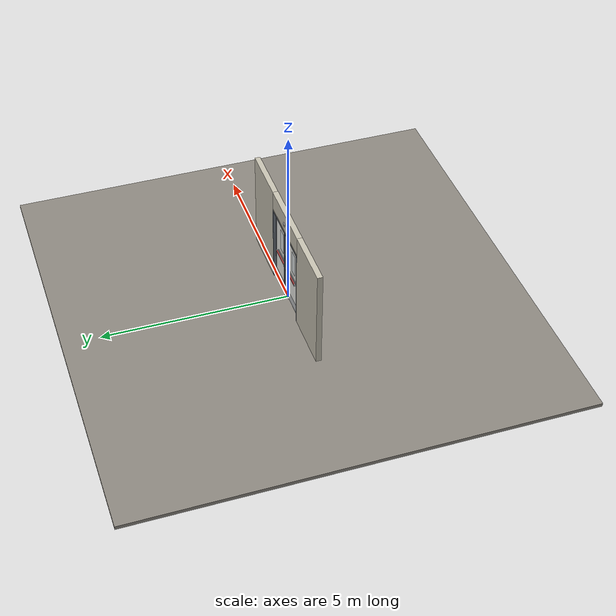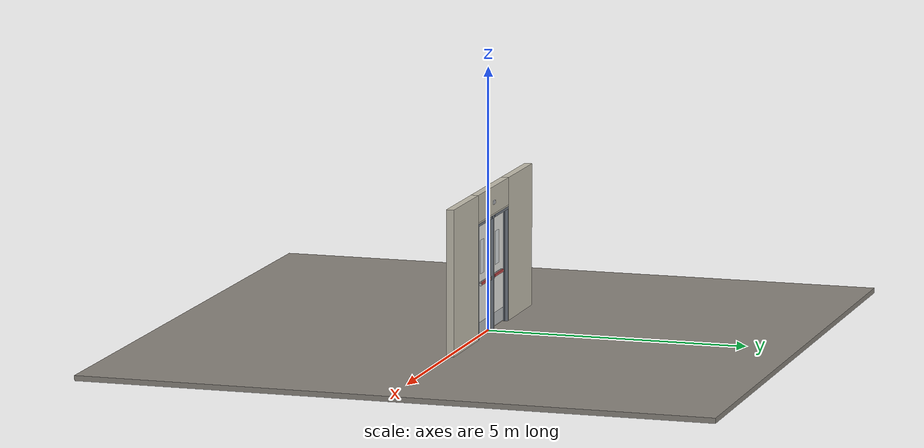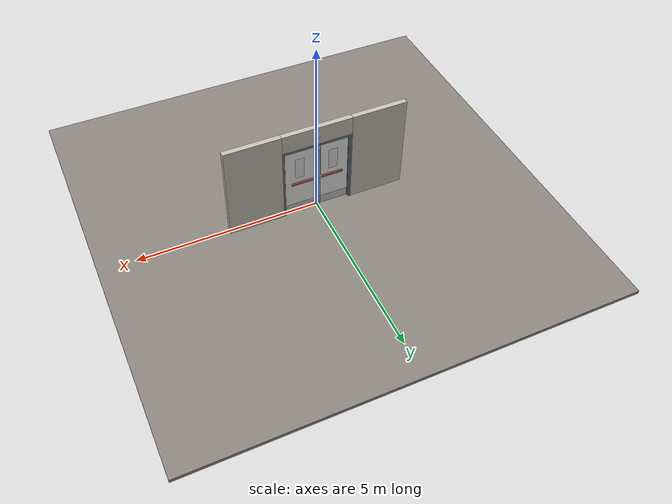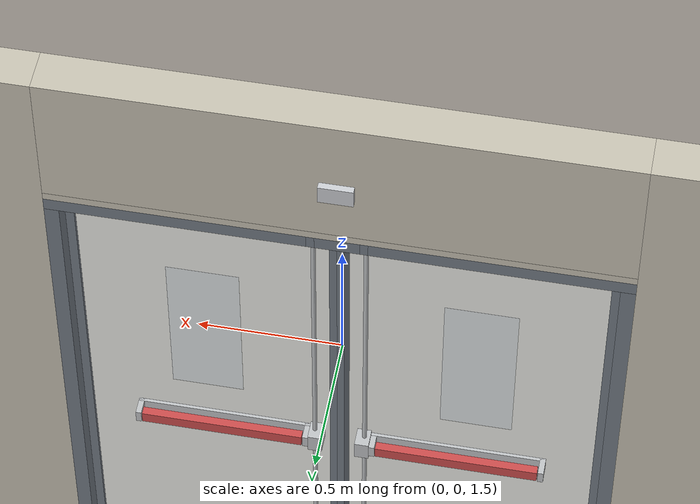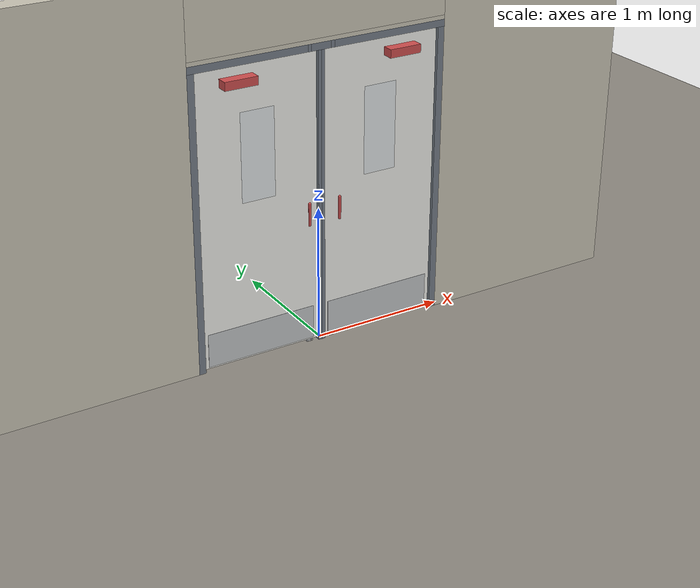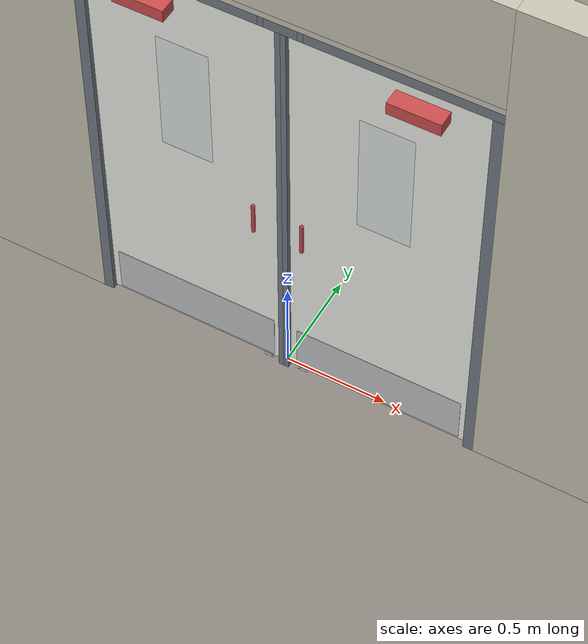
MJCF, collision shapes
<?xml version="1.0" ?>
<mujoco model="db0726_swing_double_full">
  <compiler angle="radian" meshdir="../../hardware" texturedir="../../textures" autolimits="true" inertiafromgeom="false"/>
  <option timestep="0.002" integrator="implicitfast" cone="elliptic" impratio="10" noslip_iterations="3">
    <flag multiccd="enable"/>
  </option>
  <size memory="16M"/>
  <default>
    <geom condim="4" solref="0.005 1" solimp="0.95 0.99 0.001"/>
    <joint solreflimit="0.005 1" solimplimit="0.95 0.99 0.001"/>
    <tendon solreflimit="0.005 1"/>
    <equality solref="0.002 1"/>
  </default>
  <visual>
    <headlight ambient="0.4 0.4 0.4" diffuse="0.7 0.7 0.7" specular="0.2 0.2 0.2"/>
    <quality shadowsize="4096"/>
    <map znear="0.01" zfar="60"/>
  </visual>
  <asset>
    <mesh name="closer_body_b226fdb10b" file="closer_body_b226fdb10b.obj"/>
    <mesh name="exit_sign_a6449bfa2c" file="exit_sign_a6449bfa2c.obj"/>
    <mesh name="hinge_e22b26c0c1" file="hinge_e22b26c0c1.obj"/>
    <mesh name="hinge_jamb_e1d088f8dc" file="hinge_jamb_e1d088f8dc.obj"/>
    <mesh name="pull_1e5d69a91a" file="pull_1e5d69a91a.obj"/>
    <mesh name="touchbar_pad_ddc72763ea" file="touchbar_pad_ddc72763ea.obj"/>
    <material name="mat_floor" rgba="0.55 0.53 0.5 1" specular="0.2" shininess="0.15" reflectance="0"/>
    <material name="mat_wall" rgba="0.78 0.76 0.7 1" specular="0.2" shininess="0.1" reflectance="0"/>
    <material name="mat_leaf_a" rgba="0.93 0.93 0.91 1" specular="0.23" shininess="0.6" reflectance="0.02"/>
    <material name="mat_glass" rgba="0.9 0.93 0.95 0.6" specular="0.2" shininess="0.5" reflectance="0.1"/>
    <material name="mat_hinge" rgba="0.65 0.66 0.68 1" specular="0.74" shininess="0.5" reflectance="0.36"/>
    <material name="mat_op_stainless" rgba="0.75 0.76 0.77 1" specular="0.8" shininess="0.65" reflectance="0.4"/>
    <material name="mat_bolt" rgba="0.75 0.76 0.77 1" specular="0.8" shininess="0.65" reflectance="0.4"/>
    <material name="mat_closer" rgba="0.22 0.17 0.13 1" specular="0.8" shininess="0.6" reflectance="0.4"/>
    <material name="mat_kick" rgba="0.75 0.76 0.77 1" specular="0.8" shininess="0.65" reflectance="0.4"/>
    <material name="mat_exit_sign" rgba="0.85 0.1 0.1 1" specular="0.2" shininess="0.6" reflectance="0"/>
    <material name="mat_sign_bracket" rgba="0.8 0.81 0.83 1" specular="0.8" shininess="0.6" reflectance="0.4"/>
    <material name="mat_leaf_b" rgba="0.93 0.93 0.91 1" specular="0.23" shininess="0.6" reflectance="0.02"/>
    <material name="mat_frame" rgba="0.45 0.48 0.52 1" specular="0.32" shininess="0.6" reflectance="0.08"/>
    <texture name="skybox" type="skybox" builtin="gradient" rgb1="0.6 0.7 0.85" rgb2="0.9 0.92 0.95" width="256" height="256"/>
  </asset>
  <worldbody>
    <light name="sun" pos="1.5 -2.5 4" dir="-0.3 0.5 -0.8" directional="true" diffuse="0.8 0.8 0.8" specular="0.3 0.3 0.3" castshadow="true"/>
    <light name="fill" pos="-1.5 2.5 3" dir="0.3 -0.5 -0.7" directional="true" diffuse="0.35 0.35 0.4" castshadow="false"/>
    <camera name="robot_view" pos="0 -2.607312 1.812087" xyaxes="1 0 0 0 0.26963 0.962964" fovy="52"/>
    <camera name="far_view" pos="0 2.668312 1.812087" xyaxes="-1 0 0 0 -0.26963 0.962964" fovy="52"/>
    <camera name="iso" pos="-2.004737 -2.185262 2.234138" xyaxes="0.741536 -0.670913 0 0.242917 0.268487 0.932151" fovy="46"/>
    <camera name="detail_handle" pos="0.062 -0.882 1.296" xyaxes="0.97561 0.219512 0 -0.070934 0.315262 0.94635" fovy="38"/>
    <geom name="floor" type="box" size="6 6 0.05" pos="0 0 -0.05" material="mat_floor" group="0" contype="1" conaffinity="1" friction="0.8 0.005 0.0001" density="2400"/>
    <geom name="wall_left" type="box" size="0.76575 0.0725 1.3735" pos="-1.73425 0.0305 1.3735" material="mat_wall" group="0" contype="1" conaffinity="1" friction="0.6 0.005 0.0001" density="800"/>
    <geom name="wall_right" type="box" size="0.76575 0.0725 1.3735" pos="1.73425 0.0305 1.3735" material="mat_wall" group="0" contype="1" conaffinity="1" friction="0.6 0.005 0.0001" density="800"/>
    <geom name="wall_header" type="box" size="0.9685 0.0725 0.26" pos="0 0.0305 2.487" material="mat_wall" group="0" contype="1" conaffinity="1" friction="0.6 0.005 0.0001" density="800"/>
    <geom name="hinge_0_jamb" type="mesh" mesh="hinge_jamb_e1d088f8dc" pos="-0.9155 -0.029 0.266" material="mat_hinge" group="1" contype="0" conaffinity="0" density="7850"/>
    <geom name="hinge_1_jamb" type="mesh" mesh="hinge_jamb_e1d088f8dc" pos="-0.9155 -0.029 1.0795" material="mat_hinge" group="1" contype="0" conaffinity="0" density="7850"/>
    <geom name="hinge_2_jamb" type="mesh" mesh="hinge_jamb_e1d088f8dc" pos="-0.9155 -0.029 1.963" material="mat_hinge" group="1" contype="0" conaffinity="0" density="7850"/>
    <geom name="leaf_a_bottom_strike_plate" type="box" size="0.0255 0.0255 0.00075" pos="-0.088 0 0.00075" material="mat_bolt" group="0" contype="1" conaffinity="1" friction="0.6 0.005 0.0001" density="7850"/>
    <geom name="leaf_a_bottom_strike_p" type="box" size="0.0215 0.004 0.00575" pos="-0.088 0.0145 0.00725" material="mat_bolt" group="0" contype="1" conaffinity="1" friction="0.6 0.005 0.0001" density="7850"/>
    <geom name="leaf_a_bottom_strike_n" type="box" size="0.0215 0.004 0.00575" pos="-0.088 -0.0145 0.00725" material="mat_bolt" group="0" contype="1" conaffinity="1" friction="0.6 0.005 0.0001" density="7850"/>
    <geom name="leaf_a_bottom_strike_e" type="box" size="0.004 0.0215 0.00575" pos="-0.0735 0 0.00725" material="mat_bolt" group="0" contype="1" conaffinity="1" friction="0.6 0.005 0.0001" density="7850"/>
    <geom name="exit_sign" type="mesh" mesh="exit_sign_a6449bfa2c" pos="0 0.15 2.447" material="mat_exit_sign" group="2" contype="0" conaffinity="0" density="500"/>
    <geom name="exit_sign_bracket" type="box" size="0.05775 0.0115 0.035" pos="0 0.114 2.447" material="mat_sign_bracket" group="2" contype="0" conaffinity="0" density="7850"/>
    <geom name="hinge_0_jamb_2" type="mesh" mesh="hinge_jamb_e1d088f8dc" pos="0.9155 -0.029 0.266" quat="0 0 1 0" material="mat_hinge" group="1" contype="0" conaffinity="0" density="7850"/>
    <geom name="hinge_1_jamb_2" type="mesh" mesh="hinge_jamb_e1d088f8dc" pos="0.9155 -0.029 1.0795" quat="0 0 1 0" material="mat_hinge" group="1" contype="0" conaffinity="0" density="7850"/>
    <geom name="hinge_2_jamb_2" type="mesh" mesh="hinge_jamb_e1d088f8dc" pos="0.9155 -0.029 1.963" quat="0 0 1 0" material="mat_hinge" group="1" contype="0" conaffinity="0" density="7850"/>
    <geom name="leaf_b_bottom_strike_plate" type="box" size="0.0255 0.0255 0.00075" pos="0.088 0 0.00075" material="mat_bolt" group="0" contype="1" conaffinity="1" friction="0.6 0.005 0.0001" density="7850"/>
    <geom name="leaf_b_bottom_strike_p" type="box" size="0.0215 0.004 0.00575" pos="0.088 0.0145 0.00725" material="mat_bolt" group="0" contype="1" conaffinity="1" friction="0.6 0.005 0.0001" density="7850"/>
    <geom name="leaf_b_bottom_strike_n" type="box" size="0.0215 0.004 0.00575" pos="0.088 -0.0145 0.00725" material="mat_bolt" group="0" contype="1" conaffinity="1" friction="0.6 0.005 0.0001" density="7850"/>
    <geom name="leaf_b_bottom_strike_e" type="box" size="0.004 0.0215 0.00575" pos="0.0735 0 0.00725" material="mat_bolt" group="0" contype="1" conaffinity="1" friction="0.6 0.005 0.0001" density="7850"/>
    <geom name="jamb_l" type="box" size="0.025 0.0725 1.0735" pos="-0.9435 0.0305 1.0735" material="mat_frame" group="0" contype="1" conaffinity="1" friction="0.6 0.005 0.0001" density="300"/>
    <geom name="jamb_r" type="box" size="0.025 0.0725 1.0735" pos="0.9435 0.0305 1.0735" material="mat_frame" group="0" contype="1" conaffinity="1" friction="0.6 0.005 0.0001" density="300"/>
    <geom name="jamb_head_pwall_-88_n" type="box" size="0.0135 0.0155 0.025" pos="-0.088 -0.0265 2.172" material="mat_frame" group="0" contype="1" conaffinity="1" friction="0.6 0.005 0.0001" density="300"/>
    <geom name="jamb_head_pwall_-88_p" type="box" size="0.0135 0.046 0.025" pos="-0.088 0.057 2.172" material="mat_frame" group="0" contype="1" conaffinity="1" friction="0.6 0.005 0.0001" density="300"/>
    <geom name="jamb_head_pback_-88" type="box" size="0.0135 0.011 0.0135" pos="-0.088 0 2.1835" material="mat_frame" group="0" contype="1" conaffinity="1" friction="0.6 0.005 0.0001" density="300"/>
    <geom name="jamb_head_pwall_88_n" type="box" size="0.0135 0.0155 0.025" pos="0.088 -0.0265 2.172" material="mat_frame" group="0" contype="1" conaffinity="1" friction="0.6 0.005 0.0001" density="300"/>
    <geom name="jamb_head_pwall_88_p" type="box" size="0.0135 0.046 0.025" pos="0.088 0.057 2.172" material="mat_frame" group="0" contype="1" conaffinity="1" friction="0.6 0.005 0.0001" density="300"/>
    <geom name="jamb_head_pback_88" type="box" size="0.0135 0.011 0.0135" pos="0.088 0 2.1835" material="mat_frame" group="0" contype="1" conaffinity="1" friction="0.6 0.005 0.0001" density="300"/>
    <geom name="jamb_head_0" type="box" size="0.4335 0.0725 0.025" pos="-0.535 0.0305 2.172" material="mat_frame" group="0" contype="1" conaffinity="1" friction="0.6 0.005 0.0001" density="300"/>
    <geom name="jamb_head_1" type="box" size="0.0745 0.0725 0.025" pos="0 0.0305 2.172" material="mat_frame" group="0" contype="1" conaffinity="1" friction="0.6 0.005 0.0001" density="300"/>
    <geom name="jamb_head_2" type="box" size="0.4335 0.0725 0.025" pos="0.535 0.0305 2.172" material="mat_frame" group="0" contype="1" conaffinity="1" friction="0.6 0.005 0.0001" density="300"/>
    <geom name="head_stud" type="box" size="0.9685 0.0725 0.015" pos="0 0.0305 2.212" material="mat_wall" group="0" contype="1" conaffinity="1" friction="0.6 0.005 0.0001" density="500"/>
    <geom name="stop_l" type="box" size="0.015 0.008 1.0735" pos="-0.9035 0.0305 1.0735" material="mat_frame" group="0" contype="1" conaffinity="1" friction="0.6 0.005 0.0001" density="300"/>
    <geom name="stop_r" type="box" size="0.015 0.008 1.0735" pos="0.9035 0.0305 1.0735" material="mat_frame" group="0" contype="1" conaffinity="1" friction="0.6 0.005 0.0001" density="300"/>
    <geom name="stop_head" type="box" size="0.9185 0.008 0.015" pos="0 0.0305 2.132" material="mat_frame" group="0" contype="1" conaffinity="1" friction="0.6 0.005 0.0001" density="300"/>
    <geom name="mullion_a_seg" type="box" size="0.0125 0.0725 1.0735" pos="-0.0125 0.0305 1.0735" material="mat_frame" group="0" contype="1" conaffinity="1" friction="0.6 0.005 0.0001" density="300"/>
    <geom name="mullion_b_seg" type="box" size="0.0125 0.0725 1.0735" pos="0.0125 0.0305 1.0735" material="mat_frame" group="0" contype="1" conaffinity="1" friction="0.6 0.005 0.0001" density="300"/>
    <site name="approach_point" pos="0 -1.5 0" quat="1 0 0 0" size="0.05" rgba="0.2 0.9 0.2 0.5" group="4"/>
    <site name="goal_point" pos="0 1.5 0" quat="1 0 0 0" size="0.05" rgba="0.2 0.9 0.2 0.5" group="4"/>
    <site name="door_plane_center" pos="0 0 1.0735" quat="1 0 0 0" size="0.02" rgba="0.2 0.9 0.2 0.5" group="4"/>
    <site name="approach_point_2" pos="0 -1.5 0" quat="1 0 0 0" size="0.05" rgba="0.2 0.9 0.2 0.5" group="4"/>
    <site name="goal_point_2" pos="0 1.5 0" quat="1 0 0 0" size="0.05" rgba="0.2 0.9 0.2 0.5" group="4"/>
    <site name="door_plane_center_2" pos="0 0 1.0735" quat="1 0 0 0" size="0.02" rgba="0.2 0.9 0.2 0.5" group="4"/>
    <site name="approach_point_3" pos="0 -1.5 0" quat="1 0 0 0" size="0.05" rgba="0.2 0.9 0.2 0.5" group="4"/>
    <site name="goal_point_3" pos="0 1.5 0" quat="1 0 0 0" size="0.05" rgba="0.2 0.9 0.2 0.5" group="4"/>
    <site name="door_plane_center_3" pos="0 0 1.0735" quat="1 0 0 0" size="0.02" rgba="0.2 0.9 0.2 0.5" group="4"/>
    <body name="leaf_a" pos="-0.9185 0 0">
      <inertial pos="0.450061 -0.003723 1.115613" mass="61.319795" quat="-0.499825 0.479757 0.51327 0.50652" diaginertia="4.079818446 28.032447457 32.028278959"/>
      <joint name="leaf_a_hinge" type="hinge" axis="0 0 -1" pos="0.003 -0.029 0" limited="true" range="0 1.570796" solreflimit="0.02 1" damping="10.268966" frictionloss="2.176331" stiffness="14.018367" springref="-2.188557" armature="0.02"/>
      <geom name="leaf_a_slab" type="box" size="0.44375 0.022 1.0635" pos="0.44675 0 1.0795" material="mat_leaf_a" group="0" contype="1" conaffinity="1" friction="0.4 0.005 0.0001" density="1"/>
      <geom name="leaf_a_glass_0" type="box" size="0.125 0.0228 0.31905" pos="0.44675 0 1.5049" material="mat_glass" group="1" contype="0" conaffinity="0" density="1"/>
      <geom name="hinge_0" type="mesh" mesh="hinge_e22b26c0c1" pos="0.003 -0.029 0.266" material="mat_hinge" group="1" contype="0" conaffinity="0" density="7850"/>
      <geom name="hinge_1" type="mesh" mesh="hinge_e22b26c0c1" pos="0.003 -0.029 1.0795" material="mat_hinge" group="1" contype="0" conaffinity="0" density="7850"/>
      <geom name="hinge_2" type="mesh" mesh="hinge_e22b26c0c1" pos="0.003 -0.029 1.963" material="mat_hinge" group="1" contype="0" conaffinity="0" density="7850"/>
      <geom name="leaf_a_exit_device_rail" type="box" size="0.308438 0.006 0.025" pos="0.502062 0.028 1.016" material="mat_op_stainless" group="0" contype="1" conaffinity="1" friction="0.6 0.005 0.0001" density="3000"/>
      <geom name="leaf_a_exit_device_rail_end_n" type="box" size="0.01 0.0325 0.025" pos="0.203625 0.0545 1.016" material="mat_op_stainless" group="0" contype="1" conaffinity="1" friction="0.6 0.005 0.0001" density="3000"/>
      <geom name="leaf_a_exit_device_rail_end_p" type="box" size="0.01 0.0325 0.025" pos="0.8005 0.0545 1.016" material="mat_op_stainless" group="0" contype="1" conaffinity="1" friction="0.6 0.005 0.0001" density="3000"/>
      <geom name="leaf_a_exit_device_case" type="box" size="0.025 0.034125 0.0375" pos="0.8355 0.056125 1.016" material="mat_op_stainless" group="0" contype="1" conaffinity="1" friction="0.6 0.005 0.0001" density="3000"/>
      <geom name="leaf_a_exit_device_rod_top" type="cylinder" size="0.008 0.52975" pos="0.8305 0.052 1.58325" material="mat_op_stainless" group="1" contype="0" conaffinity="0" density="7850"/>
      <geom name="leaf_a_exit_device_rod_bot" type="cylinder" size="0.008 0.46625" pos="0.8305 0.052 0.51225" material="mat_op_stainless" group="1" contype="0" conaffinity="0" density="7850"/>
      <geom name="leaf_a_far_pull_n" type="mesh" mesh="pull_1e5d69a91a" pos="0.8005 -0.022 1.016" quat="0.707107 0.707107 0 0" material="mat_op_stainless" group="1" contype="0" conaffinity="0" density="3000"/>
      <geom name="leaf_a_far_pull_col_n" type="capsule" size="0.0095 0.08" pos="0.8005 -0.082 1.016" material="mat_op_stainless" group="3" contype="1" conaffinity="1" rgba="0.8 0.3 0.3 0.25" friction="0.7 0.01 0.0001" density="3000"/>
      <geom name="closer_body" type="mesh" mesh="closer_body_b226fdb10b" pos="0.3 -0.022 2.047" quat="0.707107 0.707107 0 0" material="mat_closer" group="1" contype="0" conaffinity="0" density="2000"/>
      <geom name="closer_body_col" type="box" size="0.12 0.04 0.03" pos="0.3 -0.062 2.047" material="mat_closer" group="3" contype="1" conaffinity="1" rgba="0.8 0.3 0.3 0.25" friction="0.6 0.005 0.0001" density="2000"/>
      <geom name="kick_plate_n" type="box" size="0.41375 0.0008 0.125" pos="0.44675 -0.0228 0.151" material="mat_kick" group="2" contype="0" conaffinity="0" density="7900"/>
      <geom name="kick_plate_p" type="box" size="0.41375 0.0008 0.125" pos="0.44675 0.0228 0.151" material="mat_kick" group="2" contype="0" conaffinity="0" density="7900"/>
      <site name="leaf_a_far_pull_grip_n" pos="0.8005 -0.082 1.016" quat="1 0 0 0" size="0.012" rgba="0.2 0.9 0.2 0.5" group="4"/>
      <site name="leaf_a_edge_mid" pos="0.8905 0 1.0635" quat="1 0 0 0" size="0.02" rgba="0.2 0.9 0.2 0.5" group="4"/>
      <body name="leaf_a_exit_device" pos="0.502062 0.022 1.016">
        <inertial pos="0 0.05 0" mass="4.624087" quat="0 0 0.707107 0.707107" diaginertia="0.001127121 0.125928648 0.126362156"/>
        <joint name="leaf_a_exit_device_slide" type="slide" axis="0 -1 0" limited="true" range="0 0.016" damping="163.508073" frictionloss="0.5" stiffness="1400" springref="-0.015714" armature="0.15"/>
        <geom name="leaf_a_exit_device_pad" type="mesh" mesh="touchbar_pad_ddc72763ea" pos="0 0 0" quat="-0.707107 0.707107 0 0" material="mat_op_stainless" group="1" contype="0" conaffinity="0" density="3000"/>
        <geom name="leaf_a_exit_device_pad_col" type="box" size="0.285438 0.015 0.0225" pos="0 0.05 0" material="mat_op_stainless" group="3" contype="1" conaffinity="1" rgba="0.8 0.3 0.3 0.25" friction="0.8 0.01 0.0001" density="3000"/>
        <site name="leaf_a_exit_device_push" pos="0 0.065 0" quat="1 0 0 0" size="0.015" rgba="0.2 0.9 0.2 0.5" group="4"/>
      </body>
      <body name="leaf_a_top_latch" pos="0.8305 0 2.143">
        <inertial pos="0 0 -0.0155" mass="0.151026" quat="0.707107 0 0.707107 0" diaginertia="0.00000654 0.000053442 0.000053442"/>
        <joint name="leaf_a_top_latch_slide" type="slide" axis="0 0 -1" limited="true" range="0 0.019" damping="2" frictionloss="0.3" stiffness="800" springref="-0.01" armature="0.1"/>
        <geom name="leaf_a_top_latch_capsule" type="capsule" size="0.0095 0.025" pos="0 0 -0.0155" material="mat_bolt" group="0" contype="1" conaffinity="1" friction="0.2 0.005 0.0001" density="8500"/>
      </body>
      <body name="leaf_a_bottom_latch" pos="0.8305 0 0.03">
        <inertial pos="0 0 0.012" mass="0.167896" quat="0.707107 0 0.707107 0" diaginertia="0.000007301 0.000072388 0.000072388"/>
        <joint name="leaf_a_bottom_latch_slide" type="slide" axis="0 0 1" limited="true" range="0 0.026" damping="2" frictionloss="0.3" stiffness="800" springref="-0.01" armature="0.1"/>
        <geom name="leaf_a_bottom_latch_capsule" type="capsule" size="0.0095 0.0285" pos="0 0 0.012" material="mat_bolt" group="0" contype="1" conaffinity="1" friction="0.2 0.005 0.0001" density="8500"/>
      </body>
    </body>
    <body name="leaf_b" pos="0.9185 0 0">
      <inertial pos="-0.450061 -0.003723 1.115613" mass="61.319795" quat="0.50652 -0.51327 -0.479757 -0.499825" diaginertia="4.079818446 28.032447457 32.028278959"/>
      <joint name="leaf_b_hinge" type="hinge" axis="0 0 1" pos="-0.003 -0.029 0" limited="true" range="0 1.570796" solreflimit="0.02 1" damping="10.268966" frictionloss="2.176331" stiffness="14.018367" springref="-2.188557" armature="0.02"/>
      <geom name="leaf_b_slab" type="box" size="0.44375 0.022 1.0635" pos="-0.44675 0 1.0795" material="mat_leaf_b" group="0" contype="1" conaffinity="1" friction="0.4 0.005 0.0001" density="1"/>
      <geom name="leaf_b_glass_0" type="box" size="0.125 0.0228 0.31905" pos="-0.44675 0 1.5049" material="mat_glass" group="1" contype="0" conaffinity="0" density="1"/>
      <geom name="hinge_0_2" type="mesh" mesh="hinge_e22b26c0c1" pos="-0.003 -0.029 0.266" quat="0 0 1 0" material="mat_hinge" group="1" contype="0" conaffinity="0" density="7850"/>
      <geom name="hinge_1_2" type="mesh" mesh="hinge_e22b26c0c1" pos="-0.003 -0.029 1.0795" quat="0 0 1 0" material="mat_hinge" group="1" contype="0" conaffinity="0" density="7850"/>
      <geom name="hinge_2_2" type="mesh" mesh="hinge_e22b26c0c1" pos="-0.003 -0.029 1.963" quat="0 0 1 0" material="mat_hinge" group="1" contype="0" conaffinity="0" density="7850"/>
      <geom name="leaf_b_exit_device_rail" type="box" size="0.308438 0.006 0.025" pos="-0.502062 0.028 1.016" material="mat_op_stainless" group="0" contype="1" conaffinity="1" friction="0.6 0.005 0.0001" density="3000"/>
      <geom name="leaf_b_exit_device_rail_end_n" type="box" size="0.01 0.0325 0.025" pos="-0.8005 0.0545 1.016" material="mat_op_stainless" group="0" contype="1" conaffinity="1" friction="0.6 0.005 0.0001" density="3000"/>
      <geom name="leaf_b_exit_device_rail_end_p" type="box" size="0.01 0.0325 0.025" pos="-0.203625 0.0545 1.016" material="mat_op_stainless" group="0" contype="1" conaffinity="1" friction="0.6 0.005 0.0001" density="3000"/>
      <geom name="leaf_b_exit_device_case" type="box" size="0.025 0.034125 0.0375" pos="-0.8355 0.056125 1.016" material="mat_op_stainless" group="0" contype="1" conaffinity="1" friction="0.6 0.005 0.0001" density="3000"/>
      <geom name="leaf_b_exit_device_rod_top" type="cylinder" size="0.008 0.52975" pos="-0.8305 0.052 1.58325" material="mat_op_stainless" group="1" contype="0" conaffinity="0" density="7850"/>
      <geom name="leaf_b_exit_device_rod_bot" type="cylinder" size="0.008 0.46625" pos="-0.8305 0.052 0.51225" material="mat_op_stainless" group="1" contype="0" conaffinity="0" density="7850"/>
      <geom name="leaf_b_far_pull_n" type="mesh" mesh="pull_1e5d69a91a" pos="-0.8005 -0.022 1.016" quat="0 0 -0.707107 0.707107" material="mat_op_stainless" group="1" contype="0" conaffinity="0" density="3000"/>
      <geom name="leaf_b_far_pull_col_n" type="capsule" size="0.0095 0.08" pos="-0.8005 -0.082 1.016" material="mat_op_stainless" group="3" contype="1" conaffinity="1" rgba="0.8 0.3 0.3 0.25" friction="0.7 0.01 0.0001" density="3000"/>
      <geom name="closer_body_2" type="mesh" mesh="closer_body_b226fdb10b" pos="-0.3 -0.022 2.047" quat="0 0 -0.707107 0.707107" material="mat_closer" group="1" contype="0" conaffinity="0" density="2000"/>
      <geom name="closer_body_col_2" type="box" size="0.12 0.04 0.03" pos="-0.3 -0.062 2.047" material="mat_closer" group="3" contype="1" conaffinity="1" rgba="0.8 0.3 0.3 0.25" friction="0.6 0.005 0.0001" density="2000"/>
      <geom name="kick_plate_n_2" type="box" size="0.41375 0.0008 0.125" pos="-0.44675 -0.0228 0.151" material="mat_kick" group="2" contype="0" conaffinity="0" density="7900"/>
      <geom name="kick_plate_p_2" type="box" size="0.41375 0.0008 0.125" pos="-0.44675 0.0228 0.151" material="mat_kick" group="2" contype="0" conaffinity="0" density="7900"/>
      <site name="leaf_b_far_pull_grip_n" pos="-0.8005 -0.082 1.016" quat="1 0 0 0" size="0.012" rgba="0.2 0.9 0.2 0.5" group="4"/>
      <site name="leaf_b_edge_mid" pos="-0.8905 0 1.0635" quat="1 0 0 0" size="0.02" rgba="0.2 0.9 0.2 0.5" group="4"/>
      <body name="leaf_b_exit_device" pos="-0.502062 0.022 1.016">
        <inertial pos="0 0.05 0" mass="4.624087" quat="0 0 0.707107 0.707107" diaginertia="0.001127121 0.125928648 0.126362156"/>
        <joint name="leaf_b_exit_device_slide" type="slide" axis="0 -1 0" limited="true" range="0 0.016" damping="163.508073" frictionloss="0.5" stiffness="1400" springref="-0.015714" armature="0.15"/>
        <geom name="leaf_b_exit_device_pad" type="mesh" mesh="touchbar_pad_ddc72763ea" pos="0 0 0" quat="0 0 0.707107 0.707107" material="mat_op_stainless" group="1" contype="0" conaffinity="0" density="3000"/>
        <geom name="leaf_b_exit_device_pad_col" type="box" size="0.285438 0.015 0.0225" pos="0 0.05 0" material="mat_op_stainless" group="3" contype="1" conaffinity="1" rgba="0.8 0.3 0.3 0.25" friction="0.8 0.01 0.0001" density="3000"/>
        <site name="leaf_b_exit_device_push" pos="0 0.065 0" quat="1 0 0 0" size="0.015" rgba="0.2 0.9 0.2 0.5" group="4"/>
      </body>
      <body name="leaf_b_top_latch" pos="-0.8305 0 2.143">
        <inertial pos="0 0 -0.0155" mass="0.151026" quat="0.707107 0 0.707107 0" diaginertia="0.00000654 0.000053442 0.000053442"/>
        <joint name="leaf_b_top_latch_slide" type="slide" axis="0 0 -1" limited="true" range="0 0.019" damping="2" frictionloss="0.3" stiffness="800" springref="-0.01" armature="0.1"/>
        <geom name="leaf_b_top_latch_capsule" type="capsule" size="0.0095 0.025" pos="0 0 -0.0155" material="mat_bolt" group="0" contype="1" conaffinity="1" friction="0.2 0.005 0.0001" density="8500"/>
      </body>
      <body name="leaf_b_bottom_latch" pos="-0.8305 0 0.03">
        <inertial pos="0 0 0.012" mass="0.167896" quat="0.707107 0 0.707107 0" diaginertia="0.000007301 0.000072388 0.000072388"/>
        <joint name="leaf_b_bottom_latch_slide" type="slide" axis="0 0 1" limited="true" range="0 0.026" damping="2" frictionloss="0.3" stiffness="800" springref="-0.01" armature="0.1"/>
        <geom name="leaf_b_bottom_latch_capsule" type="capsule" size="0.0095 0.0285" pos="0 0 0.012" material="mat_bolt" group="0" contype="1" conaffinity="1" friction="0.2 0.005 0.0001" density="8500"/>
      </body>
    </body>
  </worldbody>
  <tendon>
    <fixed name="leaf_a_top_latch_coupling" limited="true" range="0 10">
      <joint joint="leaf_a_top_latch_slide" coef="1"/>
      <joint joint="leaf_a_exit_device_slide" coef="-1.142857"/>
    </fixed>
    <fixed name="leaf_a_bottom_latch_coupling" limited="true" range="0 10">
      <joint joint="leaf_a_bottom_latch_slide" coef="1"/>
      <joint joint="leaf_a_exit_device_slide" coef="-1.56391"/>
    </fixed>
    <fixed name="leaf_b_top_latch_coupling" limited="true" range="0 10">
      <joint joint="leaf_b_top_latch_slide" coef="1"/>
      <joint joint="leaf_b_exit_device_slide" coef="-1.142857"/>
    </fixed>
    <fixed name="leaf_b_bottom_latch_coupling" limited="true" range="0 10">
      <joint joint="leaf_b_bottom_latch_slide" coef="1"/>
      <joint joint="leaf_b_exit_device_slide" coef="-1.56391"/>
    </fixed>
  </tendon>
  <sensor>
    <jointpos name="leaf_a_hinge_pos" joint="leaf_a_hinge"/>
    <jointvel name="leaf_a_hinge_vel" joint="leaf_a_hinge"/>
    <jointpos name="leaf_a_exit_device_slide_pos" joint="leaf_a_exit_device_slide"/>
    <jointvel name="leaf_a_exit_device_slide_vel" joint="leaf_a_exit_device_slide"/>
    <jointpos name="leaf_a_top_latch_slide_pos" joint="leaf_a_top_latch_slide"/>
    <jointvel name="leaf_a_top_latch_slide_vel" joint="leaf_a_top_latch_slide"/>
    <jointpos name="leaf_a_bottom_latch_slide_pos" joint="leaf_a_bottom_latch_slide"/>
    <jointvel name="leaf_a_bottom_latch_slide_vel" joint="leaf_a_bottom_latch_slide"/>
    <jointpos name="leaf_b_hinge_pos" joint="leaf_b_hinge"/>
    <jointvel name="leaf_b_hinge_vel" joint="leaf_b_hinge"/>
    <jointpos name="leaf_b_exit_device_slide_pos" joint="leaf_b_exit_device_slide"/>
    <jointvel name="leaf_b_exit_device_slide_vel" joint="leaf_b_exit_device_slide"/>
    <jointpos name="leaf_b_top_latch_slide_pos" joint="leaf_b_top_latch_slide"/>
    <jointvel name="leaf_b_top_latch_slide_vel" joint="leaf_b_top_latch_slide"/>
    <jointpos name="leaf_b_bottom_latch_slide_pos" joint="leaf_b_bottom_latch_slide"/>
    <jointvel name="leaf_b_bottom_latch_slide_vel" joint="leaf_b_bottom_latch_slide"/>
  </sensor>
</mujoco>
